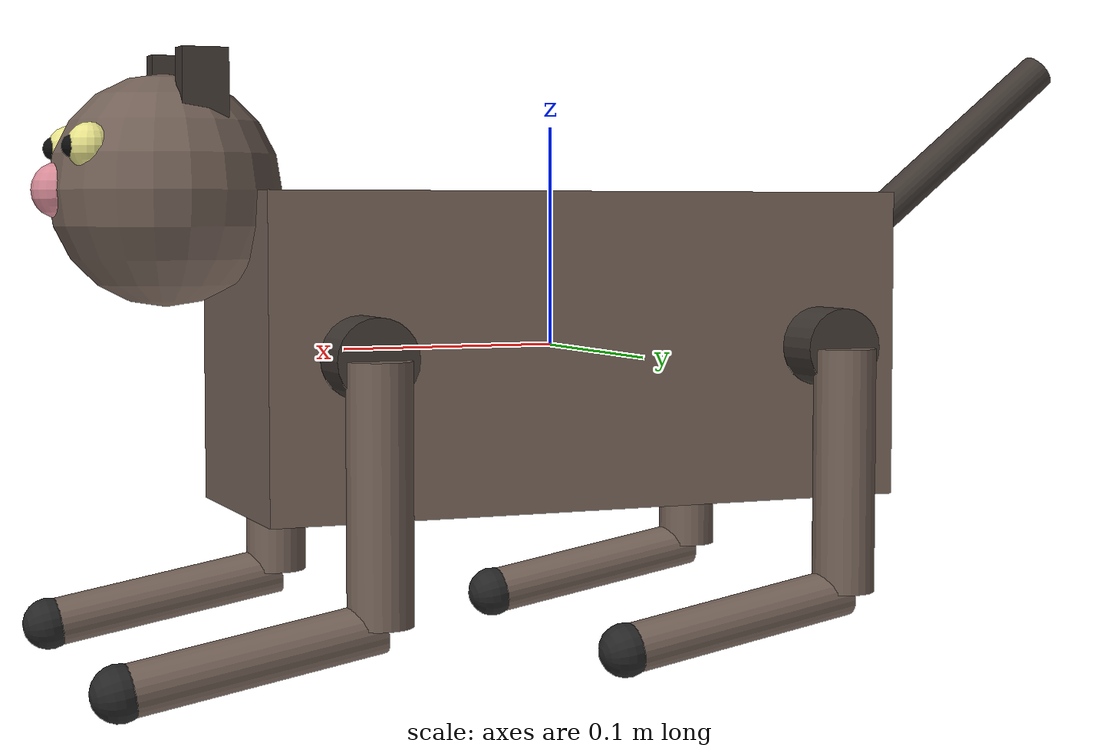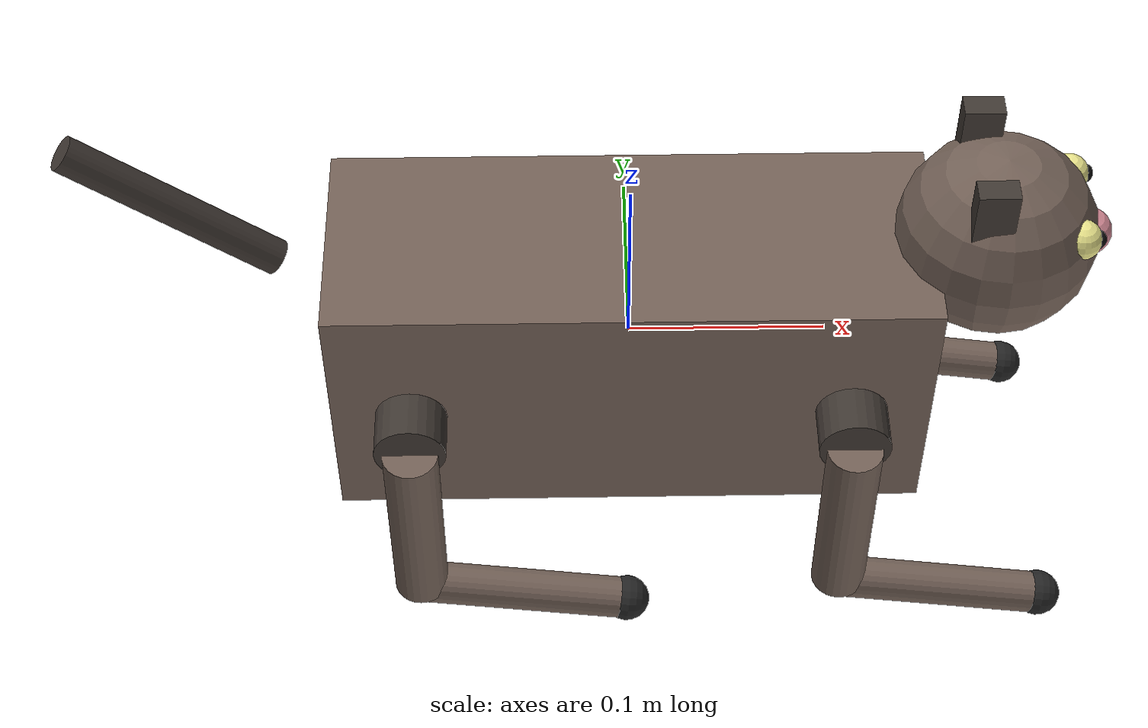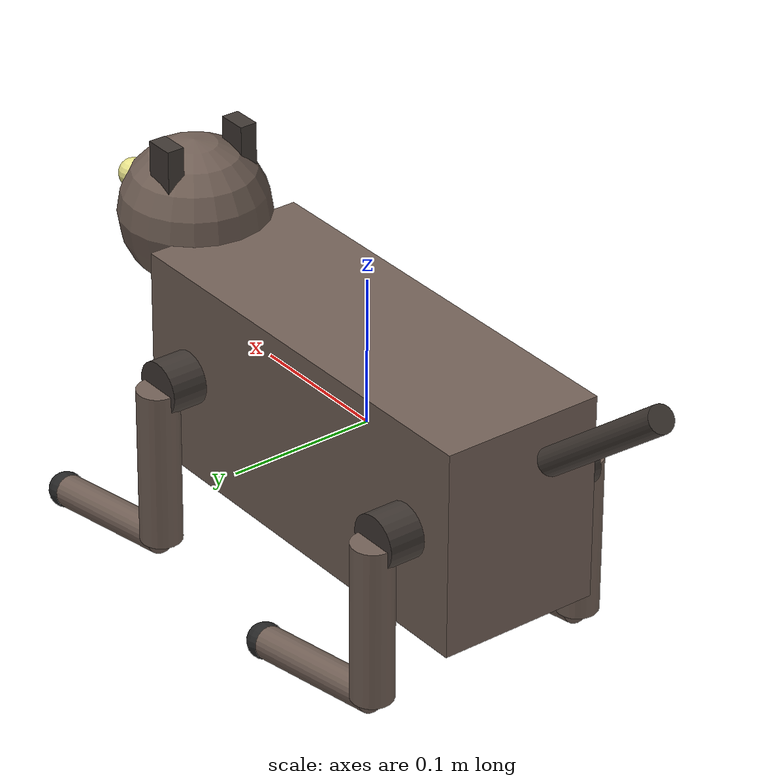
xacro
<?xml version="1.0"?>
<robot xmlns:xacro="http://www.ros.org/wiki/xacro" name="robot_cat">

  <xacro:arg name="use_gazebo" default="true"/>
  <xacro:arg name="controllers_file" default=""/>

  <xacro:arg name="scale" default="1.0"/>
  <xacro:property name="scale" value="$(arg scale)"/>

  <xacro:arg name="mass_scale" default="1.0"/>
  <xacro:property name="mass_scale" value="$(arg mass_scale)"/>

  <xacro:property name="hip_offset"   value="${0.025 * scale}"/>  <!-- hip roll -> thigh pitch, lateral -->
  <xacro:property name="thigh_length" value="${0.11 * scale}"/>
  <xacro:property name="calf_length"  value="${0.11 * scale}"/>
  <xacro:property name="foot_radius"  value="${0.012 * scale}"/>

  <xacro:property name="body_length" value="${0.30 * scale}"/>
  <xacro:property name="body_width"  value="${0.111 * scale}"/>
  <xacro:property name="body_height" value="${0.141 * scale}"/>

  <!-- Hip joint placement relative to body centre. -->
  <xacro:property name="hip_x" value="${0.11 * scale}"/>
  <xacro:property name="hip_y" value="${0.055 * scale}"/>

  <xacro:property name="body_mass"  value="${1.042 * scale**3 * mass_scale}"/>
  <xacro:property name="head_mass"  value="${0.080 * scale**3 * mass_scale}"/>
  <xacro:property name="neck_mass"  value="${0.010 * scale**3 * mass_scale}"/>
  <xacro:property name="tail_mass"  value="${0.027 * scale**3 * mass_scale}"/>
  <xacro:property name="hip_mass"   value="${0.088 * scale**3 * mass_scale}"/>
  <xacro:property name="thigh_mass" value="${0.109 * scale**3 * mass_scale}"/>
  <xacro:property name="calf_mass"  value="${0.037 * scale**3 * mass_scale}"/>

  <xacro:property name="trim_damping"  value="0.4"/>
  <xacro:property name="trim_effort"   value="${0.20 * scale**4}"/>
  <xacro:property name="trim_velocity" value="8.0"/>

  <xacro:property name="hip_range"      value="0.80"/>
  <xacro:property name="thigh_lower"    value="-1.20"/>
  <xacro:property name="thigh_upper"    value="2.60"/>
  <xacro:property name="calf_lower"     value="-2.70"/>
  <xacro:property name="calf_upper"     value="-0.10"/>

  <xacro:property name="joint_effort"   value="${2.57 * scale**4}"/>
  <xacro:property name="joint_velocity" value="4.7"/>
  <xacro:property name="joint_damping"  value="0.05"/>
  <xacro:property name="joint_friction" value="0.01"/>
  <xacro:property name="foot_mu"        value="1.2"/>

  <xacro:include filename="$(find robot_cat_description)/urdf/inertia.xacro"/>
  <xacro:include filename="$(find robot_cat_description)/urdf/leg.xacro"/>

  <material name="cat_fur">    <color rgba="0.45 0.38 0.34 1.0"/></material>
  <material name="cat_accent"> <color rgba="0.25 0.22 0.20 1.0"/></material>
  <material name="cat_paw">    <color rgba="0.15 0.15 0.15 1.0"/></material>
  <material name="cat_nose">   <color rgba="0.85 0.55 0.60 1.0"/></material>
  <material name="cat_eye">    <color rgba="0.92 0.90 0.55 1.0"/></material>
  <material name="cat_pupil">  <color rgba="0.05 0.05 0.05 1.0"/></material>

  <!-- ==================== body ==================== -->
  <link name="base_link">
    <visual>
      <geometry><box size="${body_length} ${body_width} ${body_height}"/></geometry>
      <material name="cat_fur"/>
    </visual>
    <collision>
      <geometry><box size="${body_length} ${body_width} ${body_height}"/></geometry>
    </collision>
    <xacro:box_inertia mass="${body_mass}" x="${body_length}" y="${body_width}" z="${body_height}"/>
  </link>

  <joint name="neck_pan_joint" type="revolute">
    <parent link="base_link"/>
    <child link="neck_link"/>
    <origin xyz="${body_length/2} 0 ${body_height/2}" rpy="0 0 0"/>
    <axis xyz="0 0 1"/>
    <limit lower="-0.6" upper="0.6" effort="${trim_effort}" velocity="${trim_velocity}"/>
    <dynamics damping="${trim_damping}" friction="${joint_friction}"/>
  </joint>
  <link name="neck_link">
    <xacro:box_inertia mass="${neck_mass}" x="${0.02 * scale}" y="${0.02 * scale}" z="${0.02 * scale}"/>
  </link>

  <joint name="head_tilt_joint" type="revolute">
    <parent link="neck_link"/>
    <child link="head_link"/>
    <origin xyz="${0.03 * scale} 0 0" rpy="0 0 0"/>
    <axis xyz="0 -1 0"/>
    <limit lower="-0.3" upper="0.5" effort="${trim_effort}" velocity="${trim_velocity}"/>
    <dynamics damping="${trim_damping}" friction="${joint_friction}"/>
  </joint>
  <link name="head_link">
    <visual>
      <geometry><sphere radius="${0.05 * scale}"/></geometry>
      <material name="cat_fur"/>
    </visual>
    <visual>
      <origin xyz="${0.045 * scale} 0 0" rpy="0 0 0"/>
      <geometry><sphere radius="${0.012 * scale}"/></geometry>
      <material name="cat_nose"/>
    </visual>
    <xacro:property name="eye_x" value="${0.036 * scale}"/>
    <xacro:property name="eye_y" value="${0.022 * scale}"/>
    <xacro:property name="eye_z" value="${0.018 * scale}"/>
    <xacro:macro name="cat_eye" params="side y_sign">
      <visual name="eye_${side}">
        <origin xyz="${eye_x} ${y_sign * eye_y} ${eye_z}" rpy="0 0 0"/>
        <geometry><sphere radius="${0.010 * scale}"/></geometry>
        <material name="cat_eye"/>
      </visual>
      <visual name="pupil_${side}">
        <!-- Sits just proud of the eyeball so it renders in front of it
             rather than z-fighting with the white. -->
        <origin xyz="${eye_x + 0.007 * scale} ${y_sign * eye_y} ${eye_z}" rpy="0 0 0"/>
        <geometry><sphere radius="${0.005 * scale}"/></geometry>
        <material name="cat_pupil"/>
      </visual>
    </xacro:macro>
    <xacro:cat_eye side="left"  y_sign="1"/>
    <xacro:cat_eye side="right" y_sign="-1"/>

    <!-- ears -->
    <visual>
      <origin xyz="${-0.01 * scale} ${0.028 * scale} ${0.042 * scale}" rpy="0 0 0"/>
      <geometry><box size="${0.02 * scale} ${0.012 * scale} ${0.035 * scale}"/></geometry>
      <material name="cat_accent"/>
    </visual>
    <visual>
      <origin xyz="${-0.01 * scale} ${-0.028 * scale} ${0.042 * scale}" rpy="0 0 0"/>
      <geometry><box size="${0.02 * scale} ${0.012 * scale} ${0.035 * scale}"/></geometry>
      <material name="cat_accent"/>
    </visual>
    <xacro:box_inertia mass="${head_mass}" x="${0.1 * scale}" y="${0.1 * scale}" z="${0.1 * scale}"/>
  </link>

  <joint name="tail_joint" type="revolute">
    <parent link="base_link"/>
    <child link="tail_link"/>
    <origin xyz="${-body_length/2 - 0.04 * scale} 0 ${body_height/2}" rpy="0 -0.9 0"/>
    <axis xyz="0 1 0"/>
    <!-- Wider than the sweep TailParams actually uses, so the controller
         settles on its target instead of pushing against the joint stop. -->
    <limit lower="-1.4" upper="1.0" effort="${trim_effort}" velocity="${trim_velocity}"/>
    <dynamics damping="${trim_damping}" friction="${joint_friction}"/>
  </joint>
  <link name="tail_link">
    <visual>
      <origin xyz="0 0 ${0.04 * scale}" rpy="0 0 0"/>
      <geometry><cylinder radius="${0.009 * scale}" length="${0.12 * scale}"/></geometry>
      <material name="cat_accent"/>
    </visual>
    <xacro:cylinder_inertia mass="${tail_mass}" radius="${0.009 * scale}" length="${0.12 * scale}"/>
  </link>

  <!-- ==================== legs ====================
       Joint order fl, fr, rl, rr is the contract with the gait node and
       controllers.yaml. Do not reorder without changing both. -->
  <xacro:cat_leg prefix="fl" x_sign="1"  y_sign="1"/>
  <xacro:cat_leg prefix="fr" x_sign="1"  y_sign="-1"/>
  <xacro:cat_leg prefix="rl" x_sign="-1" y_sign="1"/>
  <xacro:cat_leg prefix="rr" x_sign="-1" y_sign="-1"/>

  <gazebo reference="base_link">
    <material>Gazebo/Grey</material>
  </gazebo>

  <xacro:if value="$(arg use_gazebo)">
    <xacro:include filename="$(find robot_cat_description)/urdf/cat.ros2_control.xacro"/>
    <xacro:cat_ros2_control controllers_file="$(arg controllers_file)"/>
  </xacro:if>

</robot>

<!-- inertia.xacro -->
<robot xmlns:xacro="http://www.ros.org/wiki/xacro">

  <xacro:macro name="box_inertia" params="mass x y z">
    <inertial>
      <mass value="${mass}"/>
      <inertia
        ixx="${mass * (y*y + z*z) / 12.0}" ixy="0" ixz="0"
        iyy="${mass * (x*x + z*z) / 12.0}" iyz="0"
        izz="${mass * (x*x + y*y) / 12.0}"/>
    </inertial>
  </xacro:macro>

  <!-- Cylinder aligned with its own z axis. -->
  <xacro:macro name="cylinder_inertia" params="mass radius length">
    <inertial>
      <mass value="${mass}"/>
      <inertia
        ixx="${mass * (3.0*radius*radius + length*length) / 12.0}" ixy="0" ixz="0"
        iyy="${mass * (3.0*radius*radius + length*length) / 12.0}" iyz="0"
        izz="${mass * radius * radius / 2.0}"/>
    </inertial>
  </xacro:macro>

</robot>

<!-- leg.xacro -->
<robot xmlns:xacro="http://www.ros.org/wiki/xacro">

  <xacro:macro name="cat_leg" params="prefix x_sign y_sign">

    <!-- hip: abduction / adduction -->
    <joint name="${prefix}_hip_joint" type="revolute">
      <parent link="base_link"/>
      <child link="${prefix}_hip_link"/>
      <origin xyz="${x_sign * hip_x} ${y_sign * hip_y} 0" rpy="0 0 0"/>
      <axis xyz="1 0 0"/>
      <limit lower="${-hip_range}" upper="${hip_range}"
             effort="${joint_effort}" velocity="${joint_velocity}"/>
      <dynamics damping="${joint_damping}" friction="${joint_friction}"/>
    </joint>

    <link name="${prefix}_hip_link">
      <visual>
        <origin xyz="0 ${y_sign * hip_offset / 2.0} 0" rpy="${pi/2} 0 0"/>
        <geometry><cylinder radius="${0.018 * scale}" length="${hip_offset}"/></geometry>
        <material name="cat_accent"/>
      </visual>
      <xacro:cylinder_inertia mass="${hip_mass}" radius="${0.018 * scale}" length="${hip_offset}"/>
    </link>

    <!-- thigh: hip pitch -->
    <joint name="${prefix}_thigh_joint" type="revolute">
      <parent link="${prefix}_hip_link"/>
      <child link="${prefix}_thigh_link"/>
      <origin xyz="0 ${y_sign * hip_offset} 0" rpy="0 0 0"/>
      <axis xyz="0 1 0"/>
      <limit lower="${thigh_lower}" upper="${thigh_upper}"
             effort="${joint_effort}" velocity="${joint_velocity}"/>
      <dynamics damping="${joint_damping}" friction="${joint_friction}"/>
    </joint>

    <link name="${prefix}_thigh_link">
      <visual>
        <origin xyz="0 0 ${-thigh_length / 2.0}" rpy="0 0 0"/>
        <geometry><cylinder radius="${0.014 * scale}" length="${thigh_length}"/></geometry>
        <material name="cat_fur"/>
      </visual>
      <collision>
        <origin xyz="0 0 ${-thigh_length / 2.0}" rpy="0 0 0"/>
        <geometry><cylinder radius="${0.014 * scale}" length="${thigh_length}"/></geometry>
      </collision>
      <xacro:cylinder_inertia mass="${thigh_mass}" radius="${0.014 * scale}" length="${thigh_length}"/>
    </link>

    <joint name="${prefix}_calf_joint" type="revolute">
      <parent link="${prefix}_thigh_link"/>
      <child link="${prefix}_calf_link"/>
      <origin xyz="0 0 ${-thigh_length}" rpy="0 0 0"/>
      <axis xyz="0 1 0"/>
      <limit lower="${calf_lower}" upper="${calf_upper}"
             effort="${joint_effort}" velocity="${joint_velocity}"/>
      <dynamics damping="${joint_damping}" friction="${joint_friction}"/>
    </joint>

    <link name="${prefix}_calf_link">
      <visual>
        <origin xyz="0 0 ${-calf_length / 2.0}" rpy="0 0 0"/>
        <geometry><cylinder radius="${0.011 * scale}" length="${calf_length}"/></geometry>
        <material name="cat_fur"/>
      </visual>
      <visual>
        <origin xyz="0 0 ${-calf_length}" rpy="0 0 0"/>
        <geometry><sphere radius="${foot_radius}"/></geometry>
        <material name="cat_paw"/>
      </visual>
      <!-- Only the paw collides. Letting the calf cylinder collide too makes
           the leg catch on the ground during swing. -->
      <collision>
        <origin xyz="0 0 ${-calf_length}" rpy="0 0 0"/>
        <geometry><sphere radius="${foot_radius}"/></geometry>
      </collision>
      <xacro:cylinder_inertia mass="${calf_mass}" radius="${0.011 * scale}" length="${calf_length}"/>
    </link>

    <!-- Reference frame at the contact point, for debugging in RViz/tf. -->
    <joint name="${prefix}_foot_joint" type="fixed">
      <parent link="${prefix}_calf_link"/>
      <child link="${prefix}_foot"/>
      <origin xyz="0 0 ${-calf_length - foot_radius}" rpy="0 0 0"/>
    </joint>
    <link name="${prefix}_foot"/>

    <!-- Rubber paw: high friction so the cat pushes off instead of skating. -->
    <gazebo reference="${prefix}_calf_link">
      <mu1>${foot_mu}</mu1>
      <mu2>${foot_mu}</mu2>
      <kp>1000000.0</kp>
      <kd>100.0</kd>
      <material>Gazebo/DarkGrey</material>
    </gazebo>

  </xacro:macro>

</robot>
